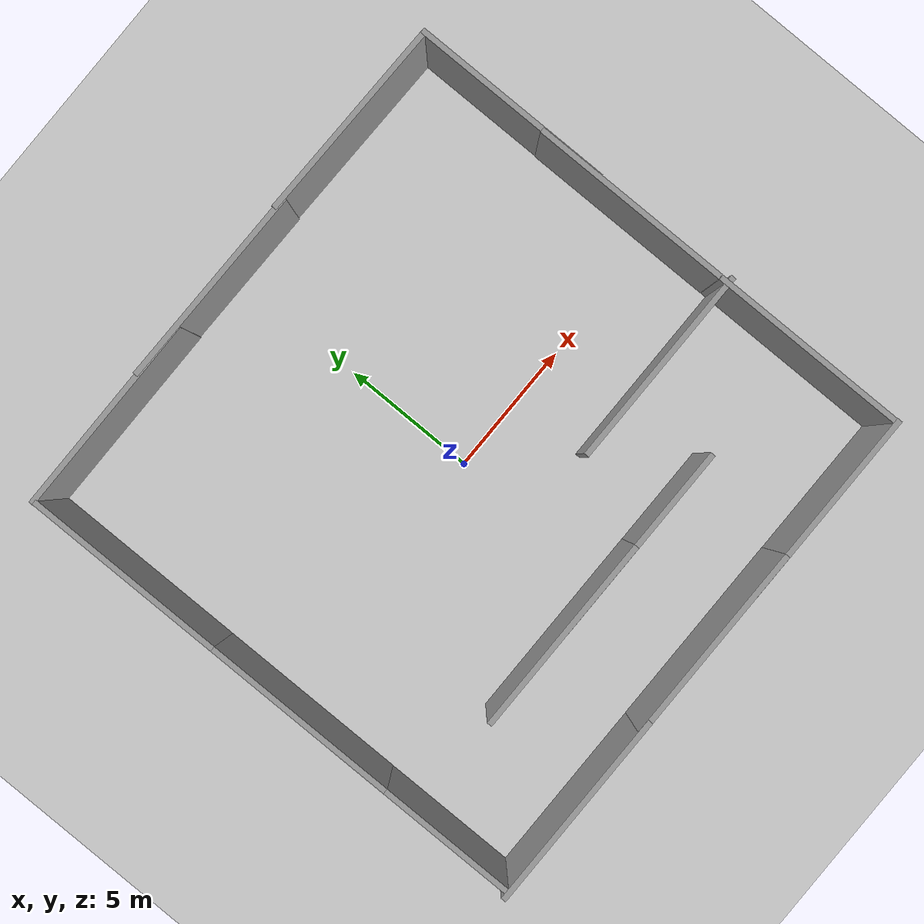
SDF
<sdf version="1.6">
 <world name="default">
  <light name="sun" type="directional">
   <pose>0 0 10 0 -0 0</pose>
   <diffuse>0.8 0.8 0.8 1</diffuse>
   <specular>0.1 0.1 0.1 1</specular>
   <attenuation>
    <range>1000</range>
    <constant>0.9</constant>
    <linear>0.01</linear>
    <quadratic>0.001</quadratic>
   </attenuation>
   <direction>-0.5 0.5 -1</direction>
  </light>
  <model name="ground_plane">
   <static>1</static>
   <link name="link">
    <collision name="collision">
     <geometry><plane><normal>0 0 1</normal><size>100 100</size></plane></geometry>
     <surface><friction><ode><mu>100</mu><mu2>50</mu2></ode></friction></surface>
    </collision>
    <visual name="visual">
     <cast_shadows>0</cast_shadows>
     <geometry><plane><normal>0 0 1</normal><size>100 100</size></plane></geometry>
     <material>
      <script><uri>file://media/materials/scripts/gazebo.material</uri><name>Gazebo/Grey</name></script>
     </material>
    </visual>
   </link>
  </model>
  <gravity>0 0 -9.8</gravity>
  <magnetic_field>6e-06 2.3e-05 -4.2e-05</magnetic_field>
  <atmosphere type="adiabatic"/>
  <physics name="default_physics" default="0" type="ode">
   <max_step_size>0.001</max_step_size>
   <real_time_factor>1</real_time_factor>
   <real_time_update_rate>1000</real_time_update_rate>
  </physics>
  <scene><ambient>0.4 0.4 0.4 1</ambient><background>0.7 0.7 0.7 1</background><shadows>1</shadows></scene>
  <spherical_coordinates>
   <surface_model>EARTH_WGS84</surface_model>
   <latitude_deg>0</latitude_deg>
   <longitude_deg>0</longitude_deg>
   <elevation>0</elevation>
   <heading_deg>0</heading_deg>
  </spherical_coordinates>
  <model name="grey_wall">
   <static>1</static>
   <link name="link">
    <pose>0 0 1.4 0 -0 0</pose>
    <collision name="collision"><geometry><box><size>7.5 0.2 2.8</size></box></geometry></collision>
    <visual name="visual">
     <cast_shadows>0</cast_shadows>
     <geometry><box><size>7.5 0.2 2.8</size></box></geometry>
     <material>
      <script>
       <uri>model://grey_wall/materials/scripts</uri>
       <uri>model://grey_wall/materials/textures</uri>
       <name>vrc/grey_wall</name>
      </script>
     </material>
    </visual>
   </link>
   <pose>-6.34629 -9.98652 0 0 -0 0</pose>
  </model>
  <model name="grey_wall_clone">
   <static>1</static>
   <link name="link">
    <pose>0 0 1.4 0 -0 0</pose>
    <collision name="collision"><geometry><box><size>7.5 0.2 2.8</size></box></geometry></collision>
    <visual name="visual">
     <cast_shadows>0</cast_shadows>
     <geometry><box><size>7.5 0.2 2.8</size></box></geometry>
     <material>
      <script>
       <uri>model://grey_wall/materials/scripts</uri>
       <uri>model://grey_wall/materials/textures</uri>
       <name>vrc/grey_wall</name>
      </script>
     </material>
    </visual>
   </link>
   <pose>0.636918 -9.97934 0 0 -0 0</pose>
  </model>
  <model name="grey_wall_clone_clone">
   <static>1</static>
   <link name="link">
    <pose>0 0 1.4 0 -0 0</pose>
    <collision name="collision"><geometry><box><size>7.5 0.2 2.8</size></box></geometry></collision>
    <visual name="visual">
     <cast_shadows>0</cast_shadows>
     <geometry><box><size>7.5 0.2 2.8</size></box></geometry>
     <material>
      <script>
       <uri>model://grey_wall/materials/scripts</uri>
       <uri>model://grey_wall/materials/textures</uri>
       <name>vrc/grey_wall</name>
      </script>
     </material>
    </visual>
   </link>
   <pose>6.35037 -9.98326 0 0 -0 0</pose>
  </model>
  <model name="grey_wall_clone_clone_clone">
   <static>1</static>
   <link name="link">
    <pose>0 0 1.4 0 -0 0</pose>
    <collision name="collision"><geometry><box><size>7.5 0.2 2.8</size></box></geometry></collision>
    <visual name="visual">
     <cast_shadows>0</cast_shadows>
     <geometry><box><size>7.5 0.2 2.8</size></box></geometry>
     <material>
      <script>
       <uri>model://grey_wall/materials/scripts</uri>
       <uri>model://grey_wall/materials/textures</uri>
       <name>vrc/grey_wall</name>
      </script>
     </material>
    </visual>
   </link>
   <pose>9.97755 -6.31028 0 0 -0 1.57279</pose>
  </model>
  <model name="grey_wall_clone_clone_clone_clone">
   <static>1</static>
   <link name="link">
    <pose>0 0 1.4 0 -0 0</pose>
    <collision name="collision"><geometry><box><size>7.5 0.2 2.8</size></box></geometry></collision>
    <visual name="visual">
     <cast_shadows>0</cast_shadows>
     <geometry><box><size>7.5 0.2 2.8</size></box></geometry>
     <material>
      <script>
       <uri>model://grey_wall/materials/scripts</uri>
       <uri>model://grey_wall/materials/textures</uri>
       <name>vrc/grey_wall</name>
      </script>
     </material>
    </visual>
   </link>
   <pose>9.96499 1.21029 0 0 -0 1.57279</pose>
  </model>
  <model name="grey_wall_clone_clone_clone_clone_0">
   <static>1</static>
   <link name="link">
    <pose>0 0 1.4 0 -0 0</pose>
    <collision name="collision"><geometry><box><size>7.5 0.2 2.8</size></box></geometry></collision>
    <visual name="visual">
     <cast_shadows>0</cast_shadows>
     <geometry><box><size>7.5 0.2 2.8</size></box></geometry>
     <material>
      <script>
       <uri>model://grey_wall/materials/scripts</uri>
       <uri>model://grey_wall/materials/textures</uri>
       <name>vrc/grey_wall</name>
      </script>
     </material>
    </visual>
   </link>
   <pose>9.98004 6.26021 0 0 -0 1.57279</pose>
  </model>
  <model name="grey_wall_clone_clone_clone_clone_0_clone">
   <static>1</static>
   <link name="link">
    <pose>0 0 1.4 0 -0 0</pose>
    <collision name="collision"><geometry><box><size>7.5 0.2 2.8</size></box></geometry></collision>
    <visual name="visual">
     <cast_shadows>0</cast_shadows>
     <geometry><box><size>7.5 0.2 2.8</size></box></geometry>
     <material>
      <script>
       <uri>model://grey_wall/materials/scripts</uri>
       <uri>model://grey_wall/materials/textures</uri>
       <name>vrc/grey_wall</name>
      </script>
     </material>
    </visual>
   </link>
   <pose>6.20804 9.98709 -0 0 0 -0.017315</pose>
  </model>
  <model name="grey_wall_clone_clone_clone_clone_0_clone_0">
   <static>1</static>
   <link name="link">
    <pose>0 0 1.4 0 -0 0</pose>
    <collision name="collision"><geometry><box><size>7.5 0.2 2.8</size></box></geometry></collision>
    <visual name="visual">
     <cast_shadows>0</cast_shadows>
     <geometry><box><size>7.5 0.2 2.8</size></box></geometry>
     <material>
      <script>
       <uri>model://grey_wall/materials/scripts</uri>
       <uri>model://grey_wall/materials/textures</uri>
       <name>vrc/grey_wall</name>
      </script>
     </material>
    </visual>
   </link>
   <pose>-0.82348 10.032 0 0 0 -0.009182</pose>
  </model>
  <model name="grey_wall_clone_clone_clone_clone_0_clone_1">
   <static>1</static>
   <link name="link">
    <pose>0 0 1.4 0 -0 0</pose>
    <collision name="collision"><geometry><box><size>7.5 0.2 2.8</size></box></geometry></collision>
    <visual name="visual">
     <cast_shadows>0</cast_shadows>
     <geometry><box><size>7.5 0.2 2.8</size></box></geometry>
     <material>
      <script>
       <uri>model://grey_wall/materials/scripts</uri>
       <uri>model://grey_wall/materials/textures</uri>
       <name>vrc/grey_wall</name>
      </script>
     </material>
    </visual>
   </link>
   <pose>-9.83564 6.22209 0 0 -0 1.57279</pose>
  </model>
  <model name="grey_wall_clone_clone_clone_clone_0_clone_2">
   <static>1</static>
   <link name="link">
    <pose>0 0 1.4 0 -0 0</pose>
    <collision name="collision"><geometry><box><size>7.5 0.2 2.8</size></box></geometry></collision>
    <visual name="visual">
     <cast_shadows>0</cast_shadows>
     <geometry><box><size>7.5 0.2 2.8</size></box></geometry>
     <material>
      <script>
       <uri>model://grey_wall/materials/scripts</uri>
       <uri>model://grey_wall/materials/textures</uri>
       <name>vrc/grey_wall</name>
      </script>
     </material>
    </visual>
   </link>
   <pose>-6.20226 10.0096 0 0 -0 0.002092</pose>
  </model>
  <model name="grey_wall_clone_clone_clone_clone_0_clone_1_clone">
   <static>1</static>
   <link name="link">
    <pose>0 0 1.4 0 -0 0</pose>
    <collision name="collision"><geometry><box><size>7.5 0.2 2.8</size></box></geometry></collision>
    <visual name="visual">
     <cast_shadows>0</cast_shadows>
     <geometry><box><size>7.5 0.2 2.8</size></box></geometry>
     <material>
      <script>
       <uri>model://grey_wall/materials/scripts</uri>
       <uri>model://grey_wall/materials/textures</uri>
       <name>vrc/grey_wall</name>
      </script>
     </material>
    </visual>
   </link>
   <pose>-9.82212 -1.04026 0 0 -0 1.57279</pose>
  </model>
  <model name="grey_wall_clone_clone_clone_clone_0_clone_1_clone_clone">
   <static>1</static>
   <link name="link">
    <pose>0 0 1.4 0 -0 0</pose>
    <collision name="collision"><geometry><box><size>7.5 0.2 2.8</size></box></geometry></collision>
    <visual name="visual">
     <cast_shadows>0</cast_shadows>
     <geometry><box><size>7.5 0.2 2.8</size></box></geometry>
     <material>
      <script>
       <uri>model://grey_wall/materials/scripts</uri>
       <uri>model://grey_wall/materials/textures</uri>
       <name>vrc/grey_wall</name>
      </script>
     </material>
    </visual>
   </link>
   <pose>-9.8152 -6.21548 0 0 -0 1.57279</pose>
  </model>
  <model name="grey_wall_clone_clone_0">
   <static>1</static>
   <link name="link">
    <pose>0 0 1.4 0 -0 0</pose>
    <collision name="collision"><geometry><box><size>7.5 0.2 2.8</size></box></geometry></collision>
    <visual name="visual">
     <cast_shadows>0</cast_shadows>
     <geometry><box><size>7.5 0.2 2.8</size></box></geometry>
     <material>
      <script>
       <uri>model://grey_wall/materials/scripts</uri>
       <uri>model://grey_wall/materials/textures</uri>
       <name>vrc/grey_wall</name>
      </script>
     </material>
    </visual>
   </link>
   <pose>-2.25081 -6.01335 0 0 -0 0</pose>
  </model>
  <model name="grey_wall_clone_clone_0_clone">
   <static>1</static>
   <link name="link">
    <pose>0 0 1.4 0 -0 0</pose>
    <collision name="collision"><geometry><box><size>7.5 0.2 2.8</size></box></geometry></collision>
    <visual name="visual">
     <cast_shadows>0</cast_shadows>
     <geometry><box><size>7.5 0.2 2.8</size></box></geometry>
     <material>
      <script>
       <uri>model://grey_wall/materials/scripts</uri>
       <uri>model://grey_wall/materials/textures</uri>
       <name>vrc/grey_wall</name>
      </script>
     </material>
    </visual>
   </link>
   <pose>1.63449 -6.01673 0 0 -0 0</pose>
  </model>
  <model name="grey_wall_clone_clone_0_clone_clone">
   <static>1</static>
   <link name="link">
    <pose>0 0 1.4 0 -0 0</pose>
    <collision name="collision"><geometry><box><size>7.5 0.2 2.8</size></box></geometry></collision>
    <visual name="visual">
     <cast_shadows>0</cast_shadows>
     <geometry><box><size>7.5 0.2 2.8</size></box></geometry>
     <material>
      <script>
       <uri>model://grey_wall/materials/scripts</uri>
       <uri>model://grey_wall/materials/textures</uri>
       <name>vrc/grey_wall</name>
      </script>
     </material>
    </visual>
   </link>
   <pose>6.49024 -2.87287 0 0 -0 0</pose>
  </model>
  <audio><device>default</device></audio>
 </world>
</sdf>
